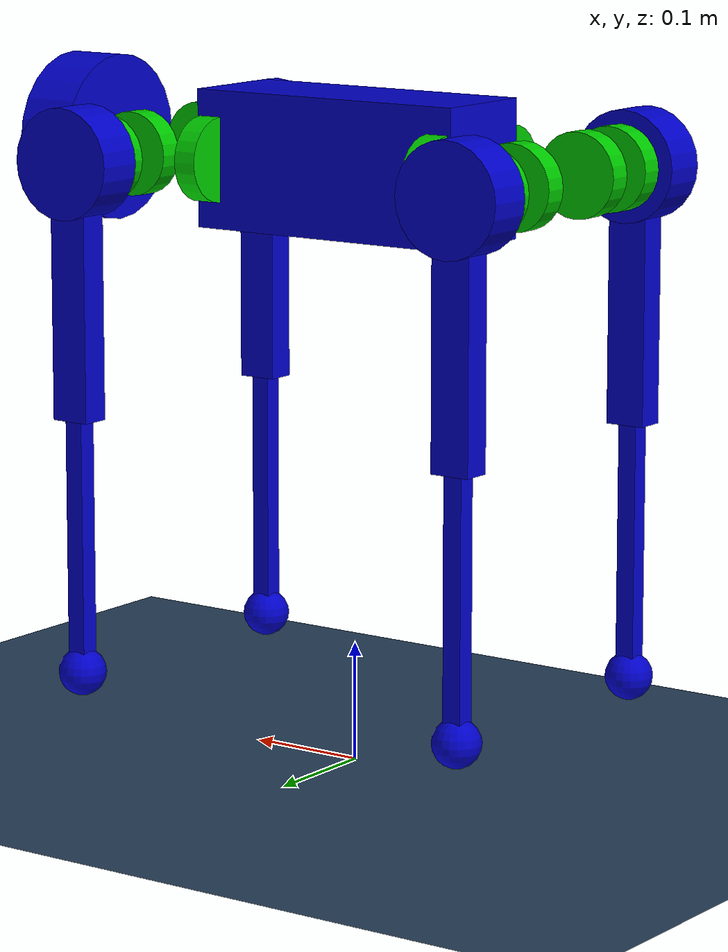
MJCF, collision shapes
<?xml version="1.0" ?>
<!-- |    This document was autogenerated by xacro from robot.xacro                    | -->
<!-- |    EDITING THIS FILE BY HAND IS NOT RECOMMENDED                                 | -->
<mujoco model="go1">
  <compiler angle="radian" eulerseq="XYZ" meshdir="../meshes/simplified_stl"/>
  <size nconmax="100" njmax="500"/>
  <option gravity="0 0 -9.806" iterations="50" noslip_iterations="50" solver="Newton" timestep="0.0005"/>
  <default>
    <geom solimp="0.9 0.95 0.001 0.5 2.0" solref="0.002 1.0"/>
    <light castshadow="false" diffuse="1 1 1"/>
    <camera fovy="60"/>
    <default class="visual">
      <geom conaffinity="0" contype="0" group="2" material="silver"/>
    </default>
    <default class="collision">
      <!-- condim=3 means no torsional or rolling fric, so last 2 friction attributes set 0 -->
      <geom conaffinity="1" condim="3" contype="1" friction="0.6 0.0 0.0" group="3" material="blue"/>
    </default>
    <default class="collision_all">
      <!-- condim=3 means no torsional or rolling fric, so last 2 friction attributes set 0 -->
      <geom conaffinity="15" condim="3" contype="15" friction="0.6 0.0 0.0" group="0"/>
    </default>
  </default>
  <asset>
    <material name="black" rgba="0.0 0.0 0.0 1.0"/>
    <material name="blue" rgba="0.0 0.0 0.8 1.0"/>
    <material name="green" rgba="0.0 0.8 0.0 1.0"/>
    <material name="silver" rgba="0.9137254901960784 0.9137254901960784 0.8470588235294118 1.0"/>
    <material name="red" rgba="0.8 0.0 0.0 1.0"/>
    <texture builtin="gradient" height="512" rgb1="0.4 0.6 0.8" rgb2="0 0 0" type="skybox" width="512"/>
    <texture builtin="checker" height="300" mark="edge" markrgb="0.8 0.8 0.8" name="plane" rgb1="0.2 0.3 0.4" rgb2="0.1 0.2 0.3" type="2d" width="300"/>
    <material name="plane" reflectance="0.2" texrepeat="5 5" texture="plane" texuniform="true"/>
    <mesh file="trunk.stl" name="trunk"/>
    <mesh file="hip.stl" name="hip"/>
    <mesh file="thigh.stl" name="thigh"/>
    <mesh file="thigh_mirror.stl" name="thigh_mirror"/>
    <mesh file="calf.stl" name="calf"/>
  </asset>
  <visual>
    <headlight ambient="0.1 0.1 0.1" diffuse="0.6 0.6 0.6" specular="0.9 0.9 0.9"/>
    <rgba haze="0.15 0.25 0.35 1"/>
  </visual>
  <worldbody>
    <light diffuse=".8 .8 .8" dir="0 0 -10" directional="true" pos="0 0 10"/>
    <camera mode="trackcom" name="trackcom_RightHoriz" pos="0 -0.8 0.3" xyaxes="1 0 0 0 0 1"/>
    <camera mode="trackcom" name="tackcom_RightAbove10deg" pos="0 -0.9 0.5" xyaxes="1 0 0 0 0.174 0.985"/>
    <geom class="collision_all" material="plane" name="floor" pos="0 0 0" size="0 0 1" type="plane"/>
    <body name="trunk" pos="0 0 0.5">
      <inertial fullinertia="0.0168128557 0.063009565 0.0716547275 -0.0002296769 -0.0002945293 -4.18731e-05" mass="5.204" pos="0.0223 0.002 -0.0005"/>
      <freejoint/>
      <geom class="visual" mesh="trunk" type="mesh"/>
      <geom class="collision" size="0.125 0.04675 0.057" type="box"/>
      <geom class="collision" euler="0 1.5707963267948966 0" pos="0.27 0.0 0.005" size="0.07 0.025" type="cylinder"/>
      <site euler="0 0 0" name="trunk_cheat_site" pos="0 0 0"/>
      <site name="imu" pos="-0.01592 -0.06659 -0.00617"/>
      <body name="FR_hip" pos="0.1881 -0.04675 0">
        <inertial fullinertia="0.000334008405 0.000619101213 0.00040057614 1.0826066e-05 1.290732e-06 -1.643194e-06" mass="0.591" pos="-0.005657 0.008752 -0.000102"/>
        <joint actuatorfrcrange="-23.7 23.7" armature="0.02" axis="1 0 0" damping="0.0" frictionloss="0.0" name="FR_hip_joint" pos="0 0 0" range="-0.863 0.863" type="hinge"/>
        <geom class="visual" euler="3.141592653589793 0 0" mesh="hip" pos="0 0 0" type="mesh"/>
        <geom class="collision" euler="1.5707963267948966 0 0" pos="0 -0.08 0" size="0.046 0.02" type="cylinder"/>
        <body name="FR_thigh" pos="0 -0.08 0">
          <inertial fullinertia="0.004431760472 0.004485671726 0.000740309489 -5.7496807e-05 -0.000218457134 -0.000572001265" mass="0.92" pos="-0.003342 0.018054 -0.033451"/>
          <joint actuatorfrcrange="-23.7 23.7" armature="0.02" axis="0 1 0" damping="0.0" frictionloss="0.0" name="FR_thigh_joint" pos="0 0 0" range="-0.686 4.501" type="hinge"/>
          <geom class="visual" euler="0 0 0" mesh="thigh_mirror" pos="0 0 0" type="mesh"/>
          <geom class="collision" euler="0 1.5707963267948966 0" pos="0 0 -0.1065" size="0.1065 0.01225 0.017" type="box"/>
          <body name="FR_calf" pos="0 0 -0.213">
            <inertial fullinertia="0.001088793059 0.001100428748 2.4787446e-05 -2.55679e-07 7.117814e-06 2.077264e-06" mass="0.135862" pos="0.006197 0.001408 -0.116695"/>
            <joint actuatorfrcrange="-35.55 35.55" armature="0.02" axis="0 1 0" damping="0.0" frictionloss="0.0" name="FR_calf_joint" pos="0 0 0" range="-2.818 -0.888" type="hinge"/>
            <geom class="visual" euler="0 0 0" mesh="calf" pos="0 0 0" type="mesh"/>
            <geom class="collision" euler="0 1.5707963267948966 0" pos="0 0 -0.1065" size="0.1065 0.008 0.008" type="box"/>
            <body name="FR_foot" pos="0 0 -0.213">
              <inertial diaginertia="9.600000000000001e-06 9.600000000000001e-06 9.600000000000001e-06" mass="0.06" pos="0 0 0"/>
              <body name="FR_foot_for_collision" pos="0 0 0">
                <inertial diaginertia="1e-14 1e-14 1e-14" mass="1e-6" pos="0 0 0"/>
                <geom class="collision" euler="0 0 0" pos="0 0 0" size="0.02" type="sphere"/>
                <site name="FR_grf_sensor" pos="0 0 0" size="0.017" type="sphere"/>
              </body>
            </body>
          </body>
          <body name="FR_calf_rotor" pos="0.0 0.03235 0">
            <inertial fullinertia="5.9647e-05 0.000111842 5.9647e-05 0.0 0.0 0.0" mass="0.089" pos="0.0 0.0 0.0"/>
            <geom class="visual" euler="1.5707963267948966 0 0" material="green" pos="0 0 0" size="0.035 0.01" type="cylinder"/>
          </body>
        </body>
        <body name="FR_thigh_rotor" pos="0.0 0.00015 0">
          <inertial fullinertia="5.9647e-05 0.000111842 5.9647e-05 0.0 0.0 0.0" mass="0.089" pos="0.0 0.0 0.0"/>
          <geom class="visual" euler="1.5707963267948966 0 0" material="green" pos="0 0 0" size="0.035 0.01" type="cylinder"/>
        </body>
      </body>
      <body name="FR_hip_rotor" pos="0.11215 -0.04675 0">
        <inertial fullinertia="0.000111842 5.9647e-05 5.9647e-05 0.0 0.0 0.0" mass="0.089" pos="0.0 0.0 0.0"/>
        <geom class="visual" euler="0 1.5707963267948966 0" material="green" pos="0 0 0" size="0.035 0.01" type="cylinder"/>
      </body>
      <body name="FL_hip" pos="0.1881 0.04675 0">
        <inertial fullinertia="0.000334008405 0.000619101213 0.00040057614 -1.0826066e-05 1.290732e-06 1.643194e-06" mass="0.591" pos="-0.005657 -0.008752 -0.000102"/>
        <joint actuatorfrcrange="-23.7 23.7" armature="0.02" axis="1 0 0" damping="0.0" frictionloss="0.0" name="FL_hip_joint" pos="0 0 0" range="-0.863 0.863" type="hinge"/>
        <geom class="visual" euler="0 0 0" mesh="hip" pos="0 0 0" type="mesh"/>
        <geom class="collision" euler="1.5707963267948966 0 0" pos="0 0.08 0" size="0.046 0.02" type="cylinder"/>
        <body name="FL_thigh" pos="0 0.08 0">
          <inertial fullinertia="0.004431760472 0.004485671726 0.000740309489 5.7496807e-05 -0.000218457134 0.000572001265" mass="0.92" pos="-0.003342 -0.018054 -0.033451"/>
          <joint actuatorfrcrange="-23.7 23.7" armature="0.02" axis="0 1 0" damping="0.0" frictionloss="0.0" name="FL_thigh_joint" pos="0 0 0" range="-0.686 4.501" type="hinge"/>
          <geom class="visual" euler="0 0 0" mesh="thigh" pos="0 0 0" type="mesh"/>
          <geom class="collision" euler="0 1.5707963267948966 0" pos="0 0 -0.1065" size="0.1065 0.01225 0.017" type="box"/>
          <body name="FL_calf" pos="0 0 -0.213">
            <inertial fullinertia="0.001088793059 0.001100428748 2.4787446e-05 -2.55679e-07 7.117814e-06 2.077264e-06" mass="0.135862" pos="0.006197 0.001408 -0.116695"/>
            <joint actuatorfrcrange="-35.55 35.55" armature="0.02" axis="0 1 0" damping="0.0" frictionloss="0.0" name="FL_calf_joint" pos="0 0 0" range="-2.818 -0.888" type="hinge"/>
            <geom class="visual" euler="0 0 0" mesh="calf" pos="0 0 0" type="mesh"/>
            <geom class="collision" euler="0 1.5707963267948966 0" pos="0 0 -0.1065" size="0.1065 0.008 0.008" type="box"/>
            <body name="FL_foot" pos="0 0 -0.213">
              <inertial diaginertia="9.600000000000001e-06 9.600000000000001e-06 9.600000000000001e-06" mass="0.06" pos="0 0 0"/>
              <body name="FL_foot_for_collision" pos="0 0 0">
                <inertial diaginertia="1e-14 1e-14 1e-14" mass="1e-6" pos="0 0 0"/>
                <geom class="collision" euler="0 0 0" pos="0 0 0" size="0.02" type="sphere"/>
                <site name="FL_grf_sensor" pos="0 0 0" size="0.017" type="sphere"/>
              </body>
            </body>
          </body>
          <body name="FL_calf_rotor" pos="0.0 -0.03235 0">
            <inertial fullinertia="5.9647e-05 0.000111842 5.9647e-05 0.0 0.0 0.0" mass="0.089" pos="0.0 0.0 0.0"/>
            <geom class="visual" euler="1.5707963267948966 0 0" material="green" pos="0 0 0" size="0.035 0.01" type="cylinder"/>
          </body>
        </body>
        <body name="FL_thigh_rotor" pos="0.0 -0.00015 0">
          <inertial fullinertia="5.9647e-05 0.000111842 5.9647e-05 0.0 0.0 0.0" mass="0.089" pos="0.0 0.0 0.0"/>
          <geom class="visual" euler="1.5707963267948966 0 0" material="green" pos="0 0 0" size="0.035 0.01" type="cylinder"/>
        </body>
      </body>
      <body name="FL_hip_rotor" pos="0.11215 0.04675 0">
        <inertial fullinertia="0.000111842 5.9647e-05 5.9647e-05 0.0 0.0 0.0" mass="0.089" pos="0.0 0.0 0.0"/>
        <geom class="visual" euler="0 1.5707963267948966 0" material="green" pos="0 0 0" size="0.035 0.01" type="cylinder"/>
      </body>
      <body name="RR_hip" pos="-0.1881 -0.04675 0">
        <inertial fullinertia="0.000334008405 0.000619101213 0.00040057614 -1.0826066e-05 -1.290732e-06 -1.643194e-06" mass="0.591" pos="0.005657 0.008752 -0.000102"/>
        <joint actuatorfrcrange="-23.7 23.7" armature="0.02" axis="1 0 0" damping="0.0" frictionloss="0.0" name="RR_hip_joint" pos="0 0 0" range="-0.863 0.863" type="hinge"/>
        <geom class="visual" euler="3.141592653589793 3.141592653589793 0" mesh="hip" pos="0 0 0" type="mesh"/>
        <geom class="collision" euler="1.5707963267948966 0 0" pos="0 -0.08 0" size="0.046 0.02" type="cylinder"/>
        <body name="RR_thigh" pos="0 -0.08 0">
          <inertial fullinertia="0.004431760472 0.004485671726 0.000740309489 -5.7496807e-05 -0.000218457134 -0.000572001265" mass="0.92" pos="-0.003342 0.018054 -0.033451"/>
          <joint actuatorfrcrange="-23.7 23.7" armature="0.02" axis="0 1 0" damping="0.0" frictionloss="0.0" name="RR_thigh_joint" pos="0 0 0" range="-0.686 4.501" type="hinge"/>
          <geom class="visual" euler="0 0 0" mesh="thigh_mirror" pos="0 0 0" type="mesh"/>
          <geom class="collision" euler="0 1.5707963267948966 0" pos="0 0 -0.1065" size="0.1065 0.01225 0.017" type="box"/>
          <body name="RR_calf" pos="0 0 -0.213">
            <inertial fullinertia="0.001088793059 0.001100428748 2.4787446e-05 -2.55679e-07 7.117814e-06 2.077264e-06" mass="0.135862" pos="0.006197 0.001408 -0.116695"/>
            <joint actuatorfrcrange="-35.55 35.55" armature="0.02" axis="0 1 0" damping="0.0" frictionloss="0.0" name="RR_calf_joint" pos="0 0 0" range="-2.818 -0.888" type="hinge"/>
            <geom class="visual" euler="0 0 0" mesh="calf" pos="0 0 0" type="mesh"/>
            <geom class="collision" euler="0 1.5707963267948966 0" pos="0 0 -0.1065" size="0.1065 0.008 0.008" type="box"/>
            <body name="RR_foot" pos="0 0 -0.213">
              <inertial diaginertia="9.600000000000001e-06 9.600000000000001e-06 9.600000000000001e-06" mass="0.06" pos="0 0 0"/>
              <body name="RR_foot_for_collision" pos="0 0 0">
                <inertial diaginertia="1e-14 1e-14 1e-14" mass="1e-6" pos="0 0 0"/>
                <geom class="collision" euler="0 0 0" pos="0 0 0" size="0.02" type="sphere"/>
                <site name="RR_grf_sensor" pos="0 0 0" size="0.017" type="sphere"/>
              </body>
            </body>
          </body>
          <body name="RR_calf_rotor" pos="0.0 0.03235 0">
            <inertial fullinertia="5.9647e-05 0.000111842 5.9647e-05 0.0 0.0 0.0" mass="0.089" pos="0.0 0.0 0.0"/>
            <geom class="visual" euler="1.5707963267948966 0 0" material="green" pos="0 0 0" size="0.035 0.01" type="cylinder"/>
          </body>
        </body>
        <body name="RR_thigh_rotor" pos="0.0 0.00015 0">
          <inertial fullinertia="5.9647e-05 0.000111842 5.9647e-05 0.0 0.0 0.0" mass="0.089" pos="0.0 0.0 0.0"/>
          <geom class="visual" euler="1.5707963267948966 0 0" material="green" pos="0 0 0" size="0.035 0.01" type="cylinder"/>
        </body>
      </body>
      <body name="RR_hip_rotor" pos="-0.11215 -0.04675 0">
        <inertial fullinertia="0.000111842 5.9647e-05 5.9647e-05 0.0 0.0 0.0" mass="0.089" pos="0.0 0.0 0.0"/>
        <geom class="visual" euler="0 1.5707963267948966 0" material="green" pos="0 0 0" size="0.035 0.01" type="cylinder"/>
      </body>
      <body name="RL_hip" pos="-0.1881 0.04675 0">
        <inertial fullinertia="0.000334008405 0.000619101213 0.00040057614 1.0826066e-05 -1.290732e-06 1.643194e-06" mass="0.591" pos="0.005657 -0.008752 -0.000102"/>
        <joint actuatorfrcrange="-23.7 23.7" armature="0.02" axis="1 0 0" damping="0.0" frictionloss="0.0" name="RL_hip_joint" pos="0 0 0" range="-0.863 0.863" type="hinge"/>
        <geom class="visual" euler="0 3.141592653589793 0" mesh="hip" pos="0 0 0" type="mesh"/>
        <geom class="collision" euler="1.5707963267948966 0 0" pos="0 0.08 0" size="0.046 0.02" type="cylinder"/>
        <body name="RL_thigh" pos="0 0.08 0">
          <inertial fullinertia="0.004431760472 0.004485671726 0.000740309489 5.7496807e-05 -0.000218457134 0.000572001265" mass="0.92" pos="-0.003342 -0.018054 -0.033451"/>
          <joint actuatorfrcrange="-23.7 23.7" armature="0.02" axis="0 1 0" damping="0.0" frictionloss="0.0" name="RL_thigh_joint" pos="0 0 0" range="-0.686 4.501" type="hinge"/>
          <geom class="visual" euler="0 0 0" mesh="thigh" pos="0 0 0" type="mesh"/>
          <geom class="collision" euler="0 1.5707963267948966 0" pos="0 0 -0.1065" size="0.1065 0.01225 0.017" type="box"/>
          <body name="RL_calf" pos="0 0 -0.213">
            <inertial fullinertia="0.001088793059 0.001100428748 2.4787446e-05 -2.55679e-07 7.117814e-06 2.077264e-06" mass="0.135862" pos="0.006197 0.001408 -0.116695"/>
            <joint actuatorfrcrange="-35.55 35.55" armature="0.02" axis="0 1 0" damping="0.0" frictionloss="0.0" name="RL_calf_joint" pos="0 0 0" range="-2.818 -0.888" type="hinge"/>
            <geom class="visual" euler="0 0 0" mesh="calf" pos="0 0 0" type="mesh"/>
            <geom class="collision" euler="0 1.5707963267948966 0" pos="0 0 -0.1065" size="0.1065 0.008 0.008" type="box"/>
            <body name="RL_foot" pos="0 0 -0.213">
              <inertial diaginertia="9.600000000000001e-06 9.600000000000001e-06 9.600000000000001e-06" mass="0.06" pos="0 0 0"/>
              <body name="RL_foot_for_collision" pos="0 0 0">
                <inertial diaginertia="1e-14 1e-14 1e-14" mass="1e-6" pos="0 0 0"/>
                <geom class="collision" euler="0 0 0" pos="0 0 0" size="0.02" type="sphere"/>
                <site name="RL_grf_sensor" pos="0 0 0" size="0.017" type="sphere"/>
              </body>
            </body>
          </body>
          <body name="RL_calf_rotor" pos="0.0 -0.03235 0">
            <inertial fullinertia="5.9647e-05 0.000111842 5.9647e-05 0.0 0.0 0.0" mass="0.089" pos="0.0 0.0 0.0"/>
            <geom class="visual" euler="1.5707963267948966 0 0" material="green" pos="0 0 0" size="0.035 0.01" type="cylinder"/>
          </body>
        </body>
        <body name="RL_thigh_rotor" pos="0.0 -0.00015 0">
          <inertial fullinertia="5.9647e-05 0.000111842 5.9647e-05 0.0 0.0 0.0" mass="0.089" pos="0.0 0.0 0.0"/>
          <geom class="visual" euler="1.5707963267948966 0 0" material="green" pos="0 0 0" size="0.035 0.01" type="cylinder"/>
        </body>
      </body>
      <body name="RL_hip_rotor" pos="-0.11215 0.04675 0">
        <inertial fullinertia="0.000111842 5.9647e-05 5.9647e-05 0.0 0.0 0.0" mass="0.089" pos="0.0 0.0 0.0"/>
        <geom class="visual" euler="0 1.5707963267948966 0" material="green" pos="0 0 0" size="0.035 0.01" type="cylinder"/>
      </body>
    </body>
  </worldbody>
  <actuator>
    <motor gear="1" joint="FR_hip_joint" name="FR_hip"/>
    <motor gear="1" joint="FR_thigh_joint" name="FR_thigh"/>
    <motor gear="1" joint="FR_calf_joint" name="FR_calf"/>
    <motor gear="1" joint="FL_hip_joint" name="FL_hip"/>
    <motor gear="1" joint="FL_thigh_joint" name="FL_thigh"/>
    <motor gear="1" joint="FL_calf_joint" name="FL_calf"/>
    <motor gear="1" joint="RR_hip_joint" name="RR_hip"/>
    <motor gear="1" joint="RR_thigh_joint" name="RR_thigh"/>
    <motor gear="1" joint="RR_calf_joint" name="RR_calf"/>
    <motor gear="1" joint="RL_hip_joint" name="RL_hip"/>
    <motor gear="1" joint="RL_thigh_joint" name="RL_thigh"/>
    <motor gear="1" joint="RL_calf_joint" name="RL_calf"/>
  </actuator>
  <sensor>
    <jointpos joint="FR_hip_joint" name="FR_hip_pos"/>
    <jointpos joint="FR_thigh_joint" name="FR_thigh_pos"/>
    <jointpos joint="FR_calf_joint" name="FR_calf_pos"/>
    <jointpos joint="FL_hip_joint" name="FL_hip_pos"/>
    <jointpos joint="FL_thigh_joint" name="FL_thigh_pos"/>
    <jointpos joint="FL_calf_joint" name="FL_calf_pos"/>
    <jointpos joint="RR_hip_joint" name="RR_hip_pos"/>
    <jointpos joint="RR_thigh_joint" name="RR_thigh_pos"/>
    <jointpos joint="RR_calf_joint" name="RR_calf_pos"/>
    <jointpos joint="RL_hip_joint" name="RL_hip_pos"/>
    <jointpos joint="RL_thigh_joint" name="RL_thigh_pos"/>
    <jointpos joint="RL_calf_joint" name="RL_calf_pos"/>
    <jointvel joint="FR_hip_joint" name="FR_hip_vel"/>
    <jointvel joint="FR_thigh_joint" name="FR_thigh_vel"/>
    <jointvel joint="FR_calf_joint" name="FR_calf_vel"/>
    <jointvel joint="FL_hip_joint" name="FL_hip_vel"/>
    <jointvel joint="FL_thigh_joint" name="FL_thigh_vel"/>
    <jointvel joint="FL_calf_joint" name="FL_calf_vel"/>
    <jointvel joint="RR_hip_joint" name="RR_hip_vel"/>
    <jointvel joint="RR_thigh_joint" name="RR_thigh_vel"/>
    <jointvel joint="RR_calf_joint" name="RR_calf_vel"/>
    <jointvel joint="RL_hip_joint" name="RL_hip_vel"/>
    <jointvel joint="RL_thigh_joint" name="RL_thigh_vel"/>
    <jointvel joint="RL_calf_joint" name="RL_calf_vel"/>
    <actuatorfrc actuator="FR_hip" name="FR_hip_torque" noise="0.01"/>
    <actuatorfrc actuator="FR_thigh" name="FR_thigh_torque" noise="0.01"/>
    <actuatorfrc actuator="FR_calf" name="FR_calf_torque" noise="0.01"/>
    <actuatorfrc actuator="FL_hip" name="FL_hip_torque" noise="0.01"/>
    <actuatorfrc actuator="FL_thigh" name="FL_thigh_torque" noise="0.01"/>
    <actuatorfrc actuator="FL_calf" name="FL_calf_torque" noise="0.01"/>
    <actuatorfrc actuator="RR_hip" name="RR_hip_torque" noise="0.01"/>
    <actuatorfrc actuator="RR_thigh" name="RR_thigh_torque" noise="0.01"/>
    <actuatorfrc actuator="RR_calf" name="RR_calf_torque" noise="0.01"/>
    <actuatorfrc actuator="RL_hip" name="RL_hip_torque" noise="0.01"/>
    <actuatorfrc actuator="RL_thigh" name="RL_thigh_torque" noise="0.01"/>
    <actuatorfrc actuator="RL_calf" name="RL_calf_torque" noise="0.01"/>
    <framequat name="imu_quat" objname="imu" objtype="site"/>
    <gyro name="imu_gyro" noise="0.002" site="imu"/>
    <accelerometer name="imu_acc" noise="0.04" site="imu"/>
    <framepos name="cheat_trunk_position_world" objname="trunk" objtype="body"/>
    <velocimeter name="cheat_trunk_lin_vel_trunk" site="trunk_cheat_site"/>
    <force name="FR_grf" site="FR_grf_sensor"/>
    <force name="FL_grf" site="FL_grf_sensor"/>
    <force name="RR_grf" site="RR_grf_sensor"/>
    <force name="RL_grf" site="RL_grf_sensor"/>
    <framequat name="FR_foot_quat" objname="FR_grf_sensor" objtype="site"/>
    <framequat name="FL_foot_quat" objname="FL_grf_sensor" objtype="site"/>
    <framequat name="RR_foot_quat" objname="RR_grf_sensor" objtype="site"/>
    <framequat name="RL_foot_quat" objname="RL_grf_sensor" objtype="site"/>
  </sensor>
  <keyframe>
    <key name="home" qpos="0 0 0.4 1 0 0 0 0 0.9 -1.6 0 0.9 -1.6 0 0.9 -1.6 0 0.9 -1.6"/>
  </keyframe>
</mujoco>
